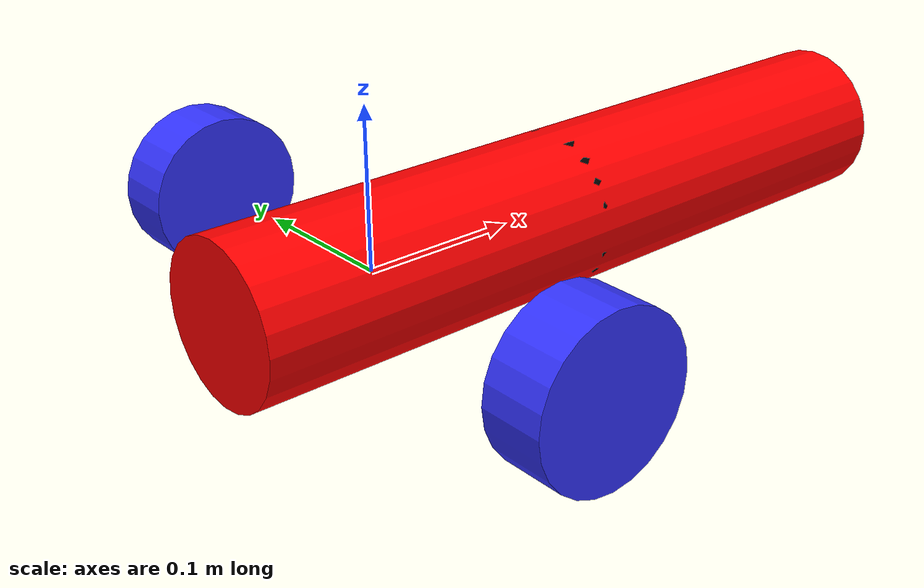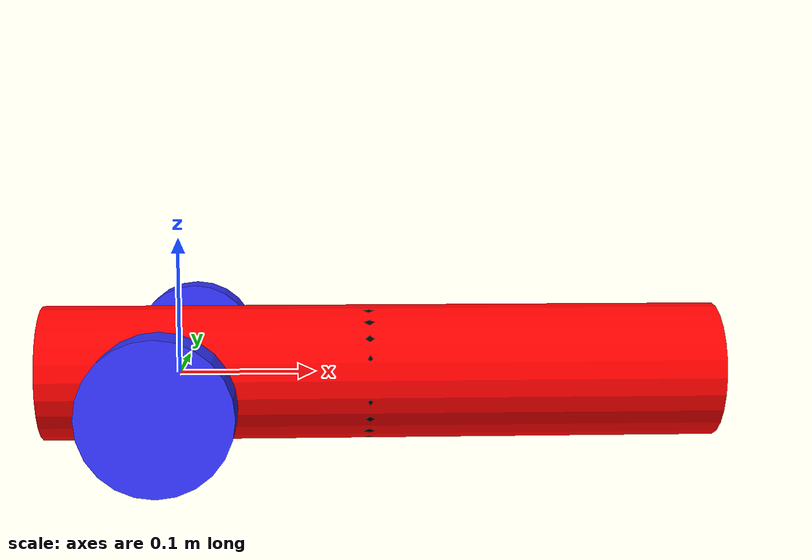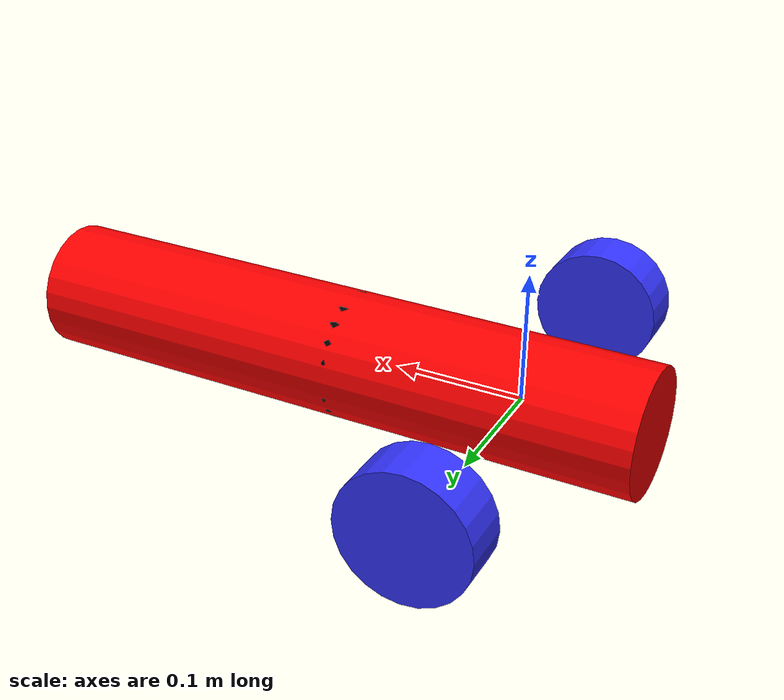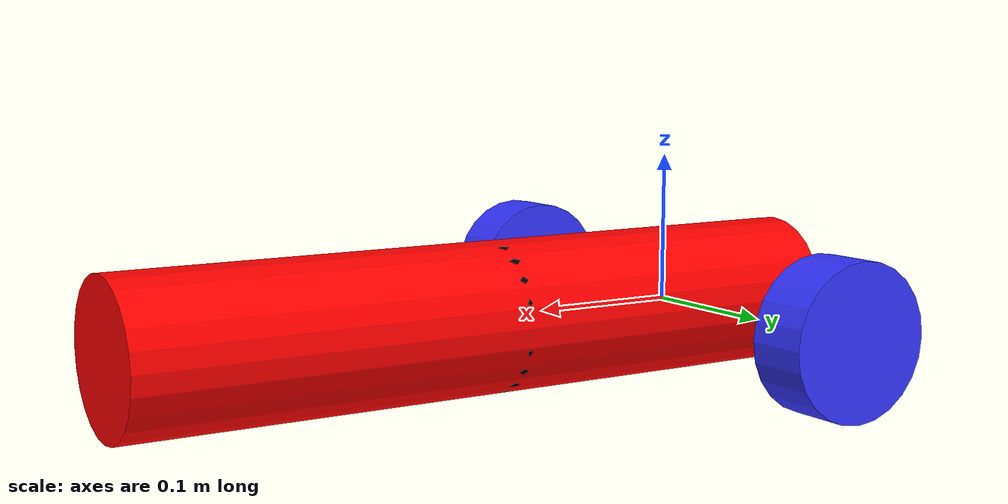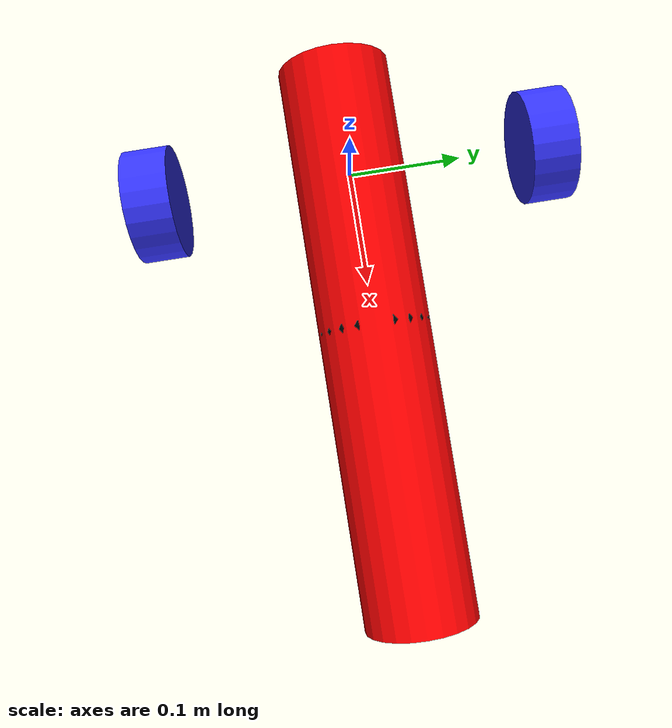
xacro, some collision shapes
<?xml version="1.0"?>
<robot xmlns:xacro="http://www.ros.org/wiki/xacro" >

    <xacro:include filename="inertial_macros.xacro"/>
    <xacro:include filename="materials.xacro"/>

    <!-- BASE LINK -->

    <link name="base_link">

    </link>

    <!-- CHASSIS LINK -->

    <joint name="chassis_joint" type="fixed">
        <parent link="base_link"/>
        <child link="chassis"/>
        <origin xyz="-0.1 0 0"/>
    </joint>

    <link name="chassis">
        <visual>
        <geometry>
            <mesh filename="file://$(find dokalman_library)/meshes/3DBenchy.stl" scale="0.01 0.01 0.01" />
        </geometry>
        <material name="red"/>
        </visual>
        <collision>
        <origin rpy="0 1.5708 0" xyz="0.25 0 0" />
        <geometry>
            <cylinder length="0.5" radius="0.05" />
        </geometry>
        <material name="red"/>
        </collision>
        <inertial>
        <origin xyz="0 0 .25" rpy="0 0 0" />
        <mass value="1" />
        <inertia ixx="1.0" ixy="0.0" ixz="0.0" iyy="1.0" iyz="0.0" izz="1.0" />
        </inertial>
    </link>

    <gazebo reference="chassis">
        <material>Gazebo/White</material>
    </gazebo>

    <!-- LEFT WHEEL LINK -->

    <joint name="left_wheel_joint" type="continuous">
        <parent link="base_link"/>
        <child link="left_wheel"/>
        <origin xyz="0 0.175 0" rpy="-${pi/2} 0 0" />
        <axis xyz="0 0 1"/>
    </joint>

    <link name="left_wheel">
        <visual>
            <geometry>
                <cylinder radius="0.05" length="0.04"/>
            </geometry>
            <material name="blue"/>
        </visual>
        <collision>
            <geometry>
                <cylinder radius="0.05" length="0.04"/>
            </geometry>
        </collision>
        <xacro:inertial_cylinder mass="0.1" length="0.04" radius="0.05">
            <origin xyz="0 0 0" rpy="0 0 0"/>
        </xacro:inertial_cylinder>
    </link>

    <gazebo reference="left_wheel">
        <material>Gazebo/Blue</material>
    </gazebo>

    <!-- RIGHT WHEEL LINK -->

    <joint name="right_wheel_joint" type="continuous">
        <parent link="base_link"/>
        <child link="right_wheel"/>
        <origin xyz="0 -0.175 0" rpy="${pi/2} 0 0" />
        <axis xyz="0 0 -1"/>
    </joint>

    <link name="right_wheel">
        <visual>
            <geometry>
                <cylinder radius="0.05" length="0.04"/>
            </geometry>
            <material name="blue"/>
        </visual>
        <collision>
            <geometry>
                <cylinder radius="0.05" length="0.04"/>
            </geometry>
        </collision>
        <xacro:inertial_cylinder mass="0.1" length="0.04" radius="0.05">
            <origin xyz="0 0 0" rpy="0 0 0"/>
        </xacro:inertial_cylinder>
    </link>

    <gazebo reference="right_wheel">
        <material>Gazebo/Blue</material>
    </gazebo>

    <!-- CASTER WHEEL LINK -->

    <joint name="caster_wheel_joint" type="fixed">
        <parent link="chassis"/>
        <child link="caster_wheel"/>
        <origin xyz="0.24 0 0"/>
    </joint>

    <link name="caster_wheel">
        <visual>
            <geometry>
                <sphere radius="0.05"/>
            </geometry>
            <material name="black"/>
        </visual>
        <collision>
            <geometry>
                <sphere radius="0.05"/>
            </geometry>
        </collision>
        <xacro:inertial_sphere mass="0.1" radius="0.05">
            <origin xyz="0 0 0" rpy="0 0 0"/>
        </xacro:inertial_sphere>
    </link>

    <gazebo reference="caster_wheel">
        <material>Gazebo/Black</material>
        <mu1 value="0.001"/>
        <mu2 value="0.001"/>
    </gazebo>

</robot>

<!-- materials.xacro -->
<robot xmlns:xacro="http://www.ros.org/wiki/xacro" >

    <material name="white">
        <color rgba="1 1 1 1" />
    </material>

    <material name="orange">
        <color rgba="1 0.3 0.1 1"/>
    </material>

    <material name="blue">
        <color rgba="0.2 0.2 1 1"/>
    </material>

    <material name="red">
        <color rgba="1 0 0 1"/>
    </material>

    <material name="black">
        <color rgba="0 0 0 1"/>
    </material>
</robot>
